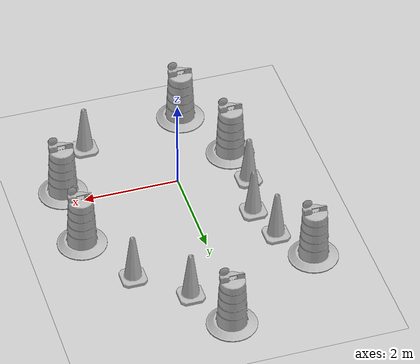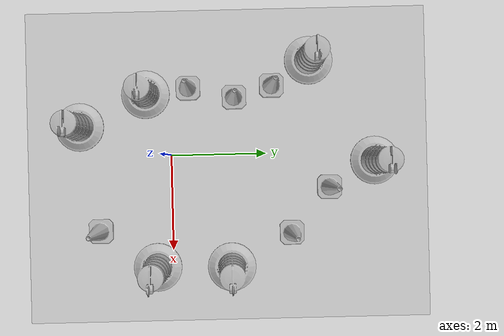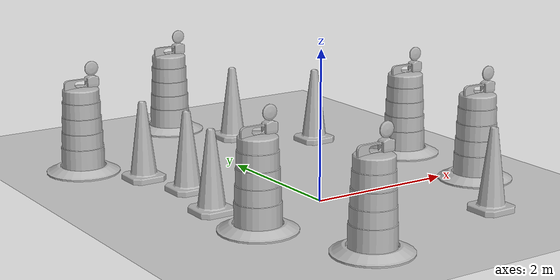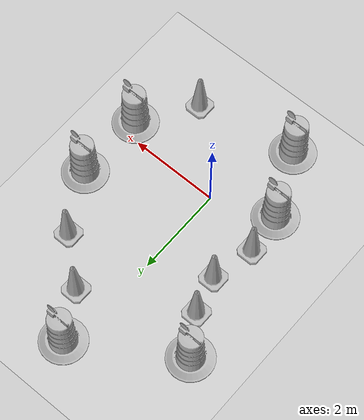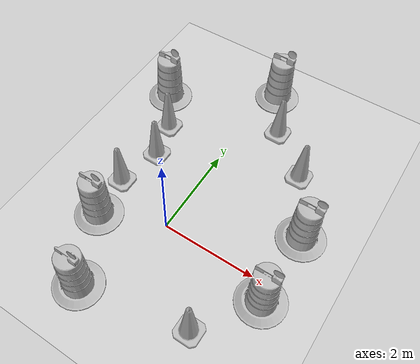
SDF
<sdf version="1.7">
 <world name="default">
  <light name="sun" type="directional">
   <pose>0 0 10 0 -0 0</pose>
   <diffuse>0.8 0.8 0.8 1</diffuse>
   <specular>0.2 0.2 0.2 1</specular>
   <attenuation>
    <range>1000</range>
    <constant>0.9</constant>
    <linear>0.01</linear>
    <quadratic>0.001</quadratic>
   </attenuation>
   <direction>-0.5 0.1 -0.9</direction>
   <spot><inner_angle>0</inner_angle><outer_angle>0</outer_angle><falloff>0</falloff></spot>
  </light>
  <model name="ground_plane">
   <static>1</static>
   <link name="link">
    <collision name="collision">
     <geometry><plane><normal>0 0 1</normal><size>100 100</size></plane></geometry>
     <surface>
      <contact><collide_bitmask>65535</collide_bitmask></contact>
      <friction><ode><mu>100</mu><mu2>50</mu2></ode></friction>
     </surface>
    </collision>
    <visual name="visual">
     <cast_shadows>0</cast_shadows>
     <geometry><plane><normal>0 0 1</normal><size>100 100</size></plane></geometry>
     <material>
      <script><uri>file://media/materials/scripts/gazebo.material</uri><name>Gazebo/Grey</name></script>
     </material>
    </visual>
   </link>
  </model>
  <gravity>0 0 -9.8</gravity>
  <magnetic_field>6e-06 2.3e-05 -4.2e-05</magnetic_field>
  <atmosphere type="adiabatic"/>
  <physics type="ode">
   <max_step_size>0.001</max_step_size>
   <real_time_factor>1</real_time_factor>
   <real_time_update_rate>1000</real_time_update_rate>
  </physics>
  <scene><ambient>0.4 0.4 0.4 1</ambient><background>0.7 0.7 0.7 1</background><shadows>1</shadows></scene>
  <audio><device>default</device></audio>
  <spherical_coordinates>
   <surface_model>EARTH_WGS84</surface_model>
   <latitude_deg>0</latitude_deg>
   <longitude_deg>0</longitude_deg>
   <elevation>0</elevation>
   <heading_deg>0</heading_deg>
  </spherical_coordinates>
  <model name="Construction Cone">
   <link name="link">
    <collision name="collision">
     <geometry>
      <mesh><scale>10 10 10</scale><uri>model://construction_cone/meshes/construction_cone.dae</uri></mesh>
     </geometry>
    </collision>
    <visual name="visual">
     <geometry>
      <mesh><scale>10 10 10</scale><uri>model://construction_cone/meshes/construction_cone.dae</uri></mesh>
     </geometry>
    </visual>
    <inertial>
     <inertia><ixx>1</ixx><ixy>0</ixy><ixz>0</ixz><iyy>1</iyy><iyz>0</iyz><izz>1</izz></inertia>
     <mass>1</mass>
    </inertial>
   </link>
   <pose>-1.4084 0.379539 -1e-05 0 1e-06 0</pose>
  </model>
  <model name="Construction Cone_0">
   <link name="link">
    <collision name="collision">
     <geometry>
      <mesh><scale>10 10 10</scale><uri>model://construction_cone/meshes/construction_cone.dae</uri></mesh>
     </geometry>
    </collision>
    <visual name="visual">
     <geometry>
      <mesh><scale>10 10 10</scale><uri>model://construction_cone/meshes/construction_cone.dae</uri></mesh>
     </geometry>
    </visual>
    <inertial>
     <inertia><ixx>1</ixx><ixy>0</ixy><ixz>0</ixz><iyy>1</iyy><iyz>0</iyz><izz>1</izz></inertia>
     <mass>1</mass>
    </inertial>
   </link>
   <pose>-1.19901 1.34644 -0 1e-06 -0 0</pose>
  </model>
  <model name="Construction Barrel">
   <link name="link">
    <inertial>
     <pose>0 0 0.4 0 -0 0</pose>
     <mass>500</mass>
     <inertia><ixx>51.2096</ixx><iyy>51.2096</iyy><izz>25</izz><ixy>0</ixy><ixz>0</ixz><iyz>0</iyz></inertia>
    </inertial>
    <collision name="collision">
     <geometry><mesh><uri>model://construction_barrel/meshes/construction_barrel.dae</uri></mesh></geometry>
    </collision>
    <visual name="visual">
     <geometry><mesh><uri>model://construction_barrel/meshes/construction_barrel.dae</uri></mesh></geometry>
    </visual>
   </link>
   <pose>-1.29792 -0.523387 -1e-06 -1e-06 4e-06 -1.8e-05</pose>
  </model>
  <model name="Construction Barrel_0">
   <link name="link">
    <inertial>
     <pose>0 0 0.4 0 -0 0</pose>
     <mass>500</mass>
     <inertia><ixx>51.2096</ixx><iyy>51.2096</iyy><izz>25</izz><ixy>0</ixy><ixz>0</ixz><iyz>0</iyz></inertia>
    </inertial>
    <collision name="collision">
     <geometry><mesh><uri>model://construction_barrel/meshes/construction_barrel.dae</uri></mesh></geometry>
    </collision>
    <visual name="visual">
     <geometry><mesh><uri>model://construction_barrel/meshes/construction_barrel.dae</uri></mesh></geometry>
    </visual>
   </link>
   <pose>-0.638187 -1.93091 1e-06 6e-06 7e-06 -1.8e-05</pose>
  </model>
  <model name="Construction Cone_1">
   <link name="link">
    <collision name="collision">
     <geometry>
      <mesh><scale>10 10 10</scale><uri>model://construction_cone/meshes/construction_cone.dae</uri></mesh>
     </geometry>
    </collision>
    <visual name="visual">
     <geometry>
      <mesh><scale>10 10 10</scale><uri>model://construction_cone/meshes/construction_cone.dae</uri></mesh>
     </geometry>
    </visual>
    <inertial>
     <inertia><ixx>1</ixx><ixy>0</ixy><ixz>0</ixz><iyy>1</iyy><iyz>0</iyz><izz>1</izz></inertia>
     <mass>1</mass>
    </inertial>
   </link>
   <pose>-1.42601 2.14138 -1e-05 0 -0 0</pose>
  </model>
  <model name="Construction Barrel_1">
   <link name="link">
    <inertial>
     <pose>0 0 0.4 0 -0 0</pose>
     <mass>500</mass>
     <inertia><ixx>51.2096</ixx><iyy>51.2096</iyy><izz>25</izz><ixy>0</ixy><ixz>0</ixz><iyz>0</iyz></inertia>
    </inertial>
    <collision name="collision">
     <geometry><mesh><uri>model://construction_barrel/meshes/construction_barrel.dae</uri></mesh></geometry>
    </collision>
    <visual name="visual">
     <geometry><mesh><uri>model://construction_barrel/meshes/construction_barrel.dae</uri></mesh></geometry>
    </visual>
   </link>
   <pose>-1.94702 2.93686 -0 0 0 -1.5e-05</pose>
  </model>
  <model name="Construction Cone_2">
   <link name="link">
    <collision name="collision">
     <geometry>
      <mesh><scale>10 10 10</scale><uri>model://construction_cone/meshes/construction_cone.dae</uri></mesh>
     </geometry>
    </collision>
    <visual name="visual">
     <geometry>
      <mesh><scale>10 10 10</scale><uri>model://construction_cone/meshes/construction_cone.dae</uri></mesh>
     </geometry>
    </visual>
    <inertial>
     <inertia><ixx>1</ixx><ixy>0</ixy><ixz>0</ixz><iyy>1</iyy><iyz>0</iyz><izz>1</izz></inertia>
     <mass>1</mass>
    </inertial>
   </link>
   <pose>1.57337 -1.51964 -0 0 -0 0</pose>
  </model>
  <model name="Construction Barrel_2">
   <link name="link">
    <inertial>
     <pose>0 0 0.4 0 -0 0</pose>
     <mass>500</mass>
     <inertia><ixx>51.2096</ixx><iyy>51.2096</iyy><izz>25</izz><ixy>0</ixy><ixz>0</ixz><iyz>0</iyz></inertia>
    </inertial>
    <collision name="collision">
     <geometry><mesh><uri>model://construction_barrel/meshes/construction_barrel.dae</uri></mesh></geometry>
    </collision>
    <visual name="visual">
     <geometry><mesh><uri>model://construction_barrel/meshes/construction_barrel.dae</uri></mesh></geometry>
    </visual>
   </link>
   <pose>2.36181 -0.338494 0 1e-06 1e-06 -1e-05</pose>
  </model>
  <model name="Construction Barrel_3">
   <link name="link">
    <inertial>
     <pose>0 0 0.4 0 -0 0</pose>
     <mass>500</mass>
     <inertia><ixx>51.2096</ixx><iyy>51.2096</iyy><izz>25</izz><ixy>0</ixy><ixz>0</ixz><iyz>0</iyz></inertia>
    </inertial>
    <collision name="collision">
     <geometry><mesh><uri>model://construction_barrel/meshes/construction_barrel.dae</uri></mesh></geometry>
    </collision>
    <visual name="visual">
     <geometry><mesh><uri>model://construction_barrel/meshes/construction_barrel.dae</uri></mesh></geometry>
    </visual>
   </link>
   <pose>2.3834 1.2292 -1e-06 -3e-06 -1e-06 -9e-06</pose>
  </model>
  <model name="Construction Cone_3">
   <link name="link">
    <collision name="collision">
     <geometry>
      <mesh><scale>10 10 10</scale><uri>model://construction_cone/meshes/construction_cone.dae</uri></mesh>
     </geometry>
    </collision>
    <visual name="visual">
     <geometry>
      <mesh><scale>10 10 10</scale><uri>model://construction_cone/meshes/construction_cone.dae</uri></mesh>
     </geometry>
    </visual>
    <inertial>
     <inertia><ixx>1</ixx><ixy>0</ixy><ixz>0</ixz><iyy>1</iyy><iyz>0</iyz><izz>1</izz></inertia>
     <mass>1</mass>
    </inertial>
   </link>
   <pose>1.68311 2.51118 -0 0 -0 0</pose>
  </model>
  <model name="Construction Cone_4">
   <link name="link">
    <collision name="collision">
     <geometry>
      <mesh><scale>10 10 10</scale><uri>model://construction_cone/meshes/construction_cone.dae</uri></mesh>
     </geometry>
    </collision>
    <visual name="visual">
     <geometry>
      <mesh><scale>10 10 10</scale><uri>model://construction_cone/meshes/construction_cone.dae</uri></mesh>
     </geometry>
    </visual>
    <inertial>
     <inertia><ixx>1</ixx><ixy>0</ixy><ixz>0</ixz><iyy>1</iyy><iyz>0</iyz><izz>1</izz></inertia>
     <mass>1</mass>
    </inertial>
   </link>
   <pose>0.736679 3.32245 -0 0 -1e-06 0</pose>
  </model>
  <model name="Construction Barrel_4">
   <link name="link">
    <inertial>
     <pose>0 0 0.4 0 -0 0</pose>
     <mass>500</mass>
     <inertia><ixx>51.2096</ixx><iyy>51.2096</iyy><izz>25</izz><ixy>0</ixy><ixz>0</ixz><iyz>0</iyz></inertia>
    </inertial>
    <collision name="collision">
     <geometry><mesh><uri>model://construction_barrel/meshes/construction_barrel.dae</uri></mesh></geometry>
    </collision>
    <visual name="visual">
     <geometry><mesh><uri>model://construction_barrel/meshes/construction_barrel.dae</uri></mesh></geometry>
    </visual>
   </link>
   <pose>0.195022 4.29289 -1e-06 3e-06 7e-06 -4e-06</pose>
  </model>
 </world>
</sdf>
